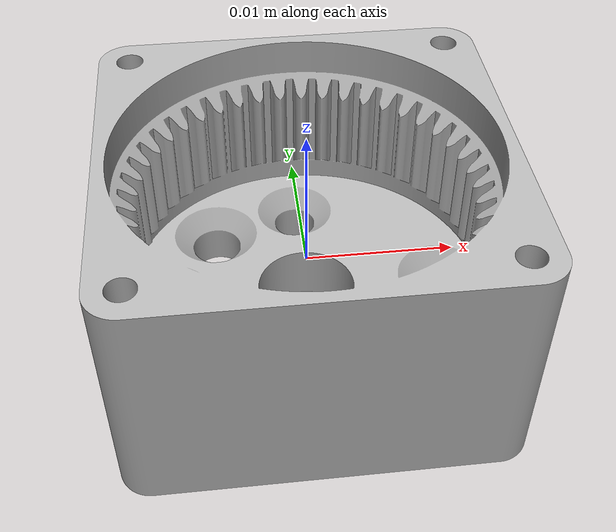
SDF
<?xml version="1.0" ?>
<sdf version="1.5">
  <model name="case">
    <static>false</static>
    <link name="link">
      <collision name="collision">
        <geometry>
          <mesh>
            <scale>1 1 1</scale>
            <uri>model://Planetary/case/case.dae</uri>
          </mesh>
        </geometry>
      </collision>
      <visual name="visual">
        <geometry>
          <mesh>
            <scale>1 1 1</scale>
            <uri>model://Planetary/case/case.dae</uri>
          </mesh>
        </geometry>
      </visual>
    </link>
  </model>
</sdf>
